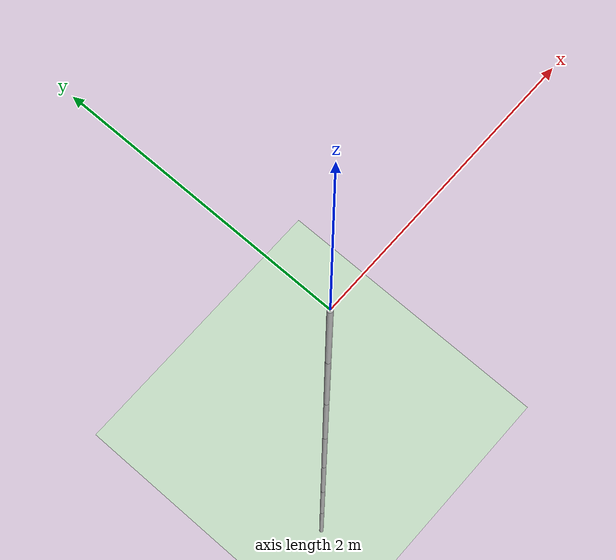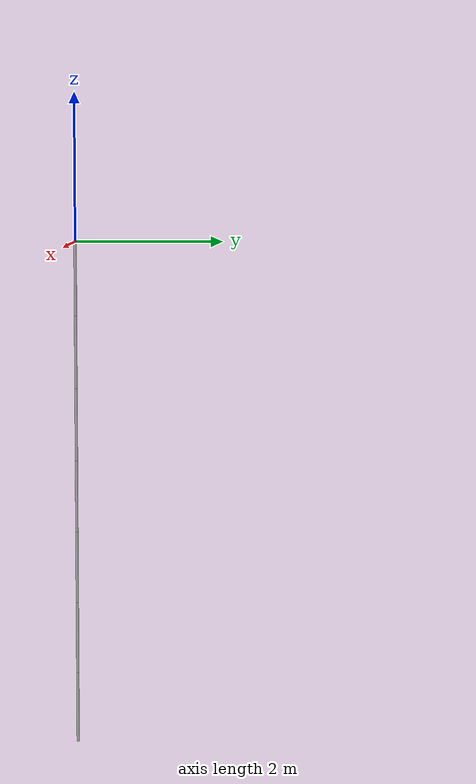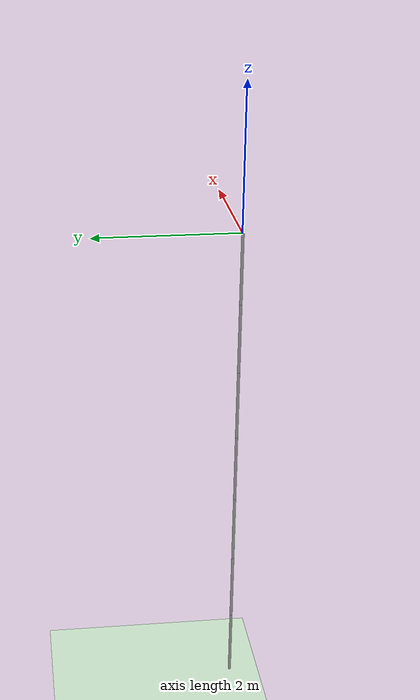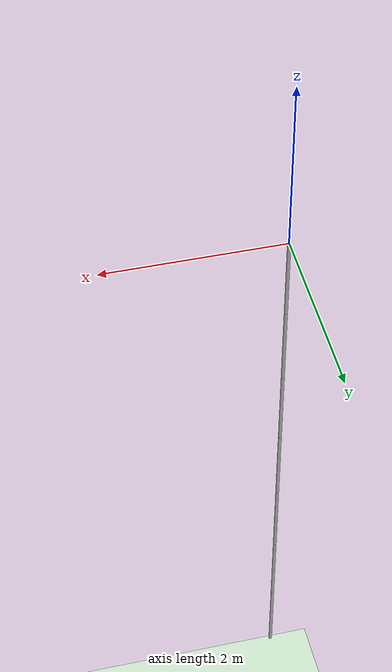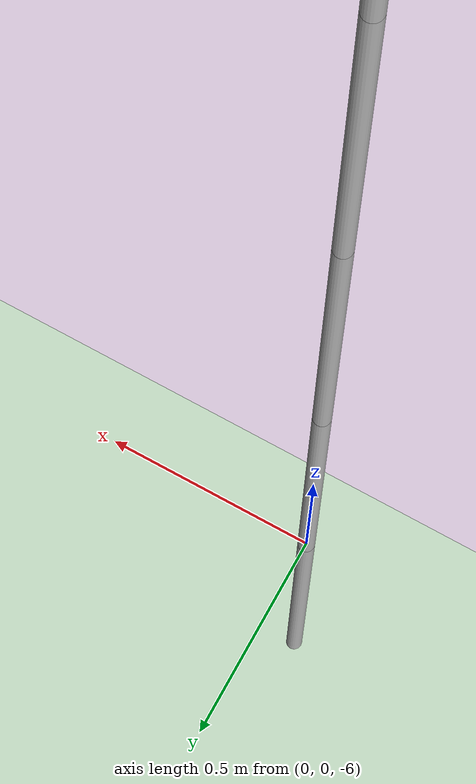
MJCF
<mujoco model="seven_pendulum">
  <option integrator="implicitfast" timestep="0.002" gravity="0 0 -9.81"/>

  <default>
    <joint damping="0" frictionloss="0"/>
    <geom rgba="0.7 0.7 0.7 1" contype="0" conaffinity="0"/>
  </default>

  <worldbody>
    <light name="top" pos="0 0 3" dir="0 0 -1"/>
    <geom name="floor" type="plane" pos="0 0 -8" size="8 8 0.1" rgba="0.8 0.9 0.8 1"/>

    <body name="link1" pos="0 0 0">
      <joint name="hinge1" type="hinge" axis="0 1 0"/>
      <inertial pos="0 0 -1.0" mass="1.0" diaginertia="1e-9 1e-9 1e-9"/>
      <geom name="link1_geom" type="cylinder" fromto="0 0 0 0 0 -1.0" size="0.02"/>

      <body name="link2" pos="0 0 -1.0">
        <joint name="hinge2" type="hinge" axis="0 1 0"/>
        <inertial pos="0 0 -1.0" mass="1.0" diaginertia="1e-9 1e-9 1e-9"/>
        <geom name="link2_geom" type="cylinder" fromto="0 0 0 0 0 -1.0" size="0.02"/>

        <body name="link3" pos="0 0 -1.0">
          <joint name="hinge3" type="hinge" axis="0 1 0"/>
          <inertial pos="0 0 -1.0" mass="1.0" diaginertia="1e-9 1e-9 1e-9"/>
          <geom name="link3_geom" type="cylinder" fromto="0 0 0 0 0 -1.0" size="0.02"/>

          <body name="link4" pos="0 0 -1.0">
            <joint name="hinge4" type="hinge" axis="0 1 0"/>
            <inertial pos="0 0 -1.0" mass="1.0" diaginertia="1e-9 1e-9 1e-9"/>
            <geom name="link4_geom" type="cylinder" fromto="0 0 0 0 0 -1.0" size="0.02"/>

            <body name="link5" pos="0 0 -1.0">
              <joint name="hinge5" type="hinge" axis="0 1 0"/>
              <inertial pos="0 0 -1.0" mass="1.0" diaginertia="1e-9 1e-9 1e-9"/>
              <geom name="link5_geom" type="cylinder" fromto="0 0 0 0 0 -1.0" size="0.02"/>

              <body name="link6" pos="0 0 -1.0">
                <joint name="hinge6" type="hinge" axis="0 1 0"/>
                <inertial pos="0 0 -1.0" mass="1.0" diaginertia="1e-9 1e-9 1e-9"/>
                <geom name="link6_geom" type="cylinder" fromto="0 0 0 0 0 -1.0" size="0.02"/>

                <body name="link7" pos="0 0 -1.0">
                  <joint name="hinge7" type="hinge" axis="0 1 0"/>
                  <inertial pos="0 0 -1.0" mass="1.0" diaginertia="1e-9 1e-9 1e-9"/>
                  <geom name="link7_geom" type="cylinder" fromto="0 0 0 0 0 -1.0" size="0.02"/>
                </body>
              </body>
            </body>
          </body>
        </body>
      </body>
    </body>
  </worldbody>

  <actuator>
    <motor name="motor1" joint="hinge1" ctrllimited="true" ctrlrange="-200 200"/>
    <motor name="motor2" joint="hinge2" ctrllimited="true" ctrlrange="-200 200"/>
    <motor name="motor3" joint="hinge3" ctrllimited="true" ctrlrange="-200 200"/>
    <motor name="motor4" joint="hinge4" ctrllimited="true" ctrlrange="-200 200"/>
    <motor name="motor5" joint="hinge5" ctrllimited="true" ctrlrange="-200 200"/>
    <motor name="motor6" joint="hinge6" ctrllimited="true" ctrlrange="-200 200"/>
    <motor name="motor7" joint="hinge7" ctrllimited="true" ctrlrange="-200 200"/>
  </actuator>
</mujoco>
